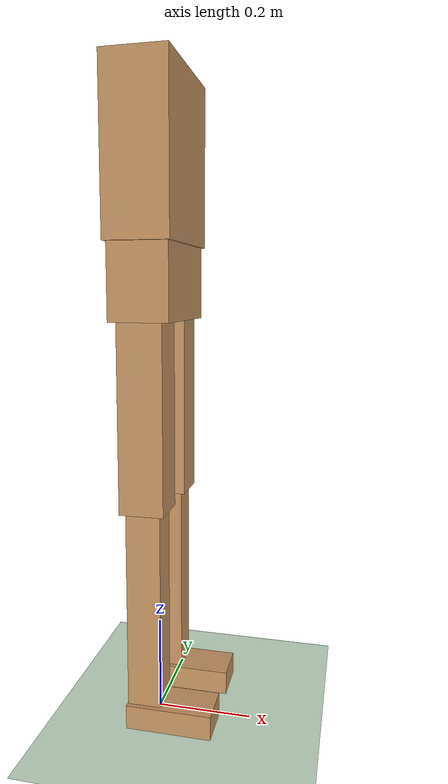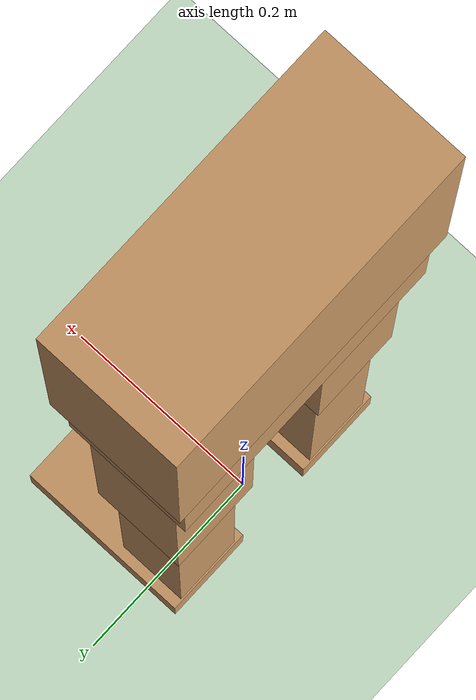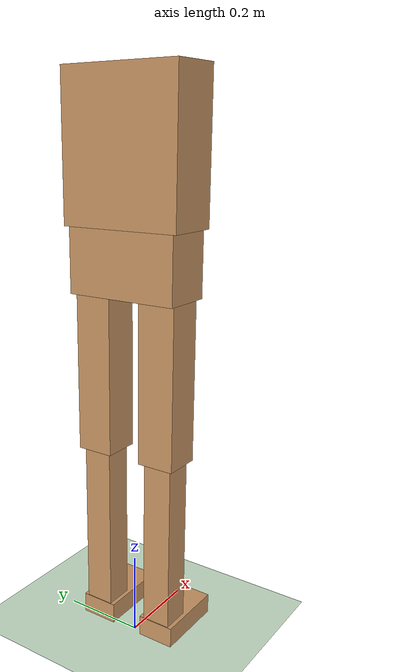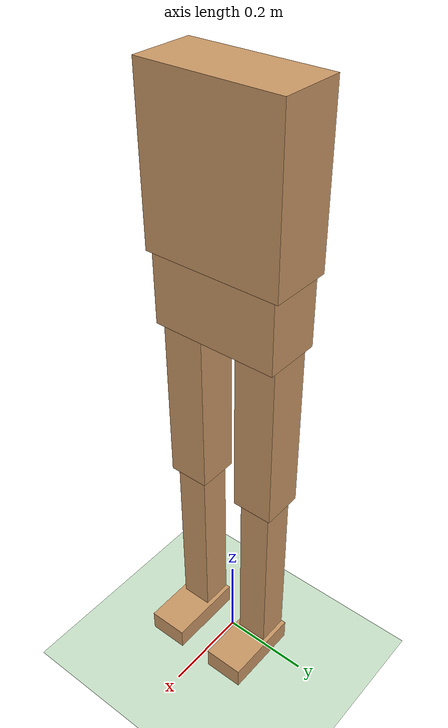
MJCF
<mujoco model="humanoid">
    <compiler angle="degree" inertiafromgeom="true"/>
    <default>
        <joint armature="1" damping="1" limited="true"/>
        <geom conaffinity="1" condim="1" contype="1" margin="0.001" material="geom" rgba="0.8 0.6 .4 1"/>
        <motor ctrllimited="true" ctrlrange="-.4 .4"/>
    </default>
    <option integrator="RK4" iterations="50" solver="PGS" timestep="0.003">
    </option>
    <size nkey="5" nuser_geom="1"/>
    <visual>
        <map fogend="5" fogstart="3"/>
    </visual>
    <asset>
        <texture builtin="gradient" height="100" rgb1=".4 .5 .6" rgb2="0 0 0" type="skybox" width="100"/>
        <texture builtin="flat" height="1278" mark="cross" markrgb="1 1 1" name="texgeom" random="0.01" rgb1="0.8 0.6 0.4" rgb2="0.8 0.6 0.4" type="cube" width="127"/>
        <texture builtin="checker" height="100" name="texplane" rgb1="0 0 0" rgb2="0.8 0.8 0.8" type="2d" width="100"/>
        <material name="MatPlane" reflectance="0.5" shininess="1" specular="1" texrepeat="60 60" texture="texplane"/>
        <material name="geom" texture="texgeom" texuniform="true"/>
    </asset>
    <worldbody>
       <light cutoff="100" diffuse="1 1 1" dir="-0 0 -1.3" directional="true" exponent="1" pos="0 0 1.3" specular=".1 .1 .1"/>
       <geom condim="3" friction="1 .1 .1" material="MatPlane" name="floor" pos="0 0 0" rgba="0.8 0.9 0.8 1" size="20 20 0.125" type="plane"/>
       <body name="pelvis" pos="0.0 0.0 0.9">
           <joint armature="0" damping="0" limited="false" name="root" pos="0 0 0" stiffness="0" type="free"/>
           <geom name="pelvis" type="box" pos="0.0 0.0 0.03" size="0.06 0.135 0.075"  mass="10.0"/>
           <body name="torso" pos="0.0 0.0 0.10" user="128">
               <joint armature="0.01" axis="1 0 0" damping="5" name="abdomen_x" pos="0.0 0.0 0.0" range="-15 15" stiffness="10" type="hinge"/>
               <joint armature="0.01" axis="0 1 0" damping="5" name="abdomen_y" pos="0.0 0.0 0.0" range="0 30" stiffness="10" type="hinge"/>
               <joint armature="0.01" axis="0 0 1" damping="5" name="abdomen_z" pos="0.0 0.0 0.0" range="-45 45" stiffness="20" type="hinge"/>
               <geom name="torso" type="box"  pos= "0.0 0.0 0.17" size="0.065 0.145 0.165" mass="15.0"/>
	   </body>

	   <body name="right_thigh" pos="0.0 -0.085 0.0">
               <joint armature="0.01" axis="1 0 0" damping="5" name="right_hip_x" pos="0.0 0.0 0.0" range="-45 0" stiffness="10" type="hinge"/>
               <joint armature="0.01" axis="0 1 0" damping="5" name="right_hip_y" pos="0.0 0.0 0.0" range="-120 60" stiffness="20" type="hinge"/>
               <joint armature="0.01" axis="0 0 1" damping="5" name="right_hip_z" pos="0.0 0.0 0.0" range="-45 45" stiffness="10" type="hinge"/>
               <geom name="right_thigh" type="box" pos="0.0 0.0 -0.21075" size="0.045 0.045 0.21075"  mass="4.5"/>
               <body name="right_knee" pos="0.0 0.0 -0.4215">
                   <joint armature="0.010" axis="0 -1 0" name="right_knee" pos="0.0 0.0 0.0" range="-110 0" type="hinge"/>
		   <geom name="right_knee" type="box" pos="0.0 0.0 -0.19493" size="0.035 0.035 0.215"  mass="3.0"/>
                   <body name="right_foot" pos="0.0 0.0 -0.40987">
                       <joint armature="0.0030" axis="1 0 0" name="right_ankle_x" pos="0.0 0.0 0.0" range="-30 30" type="hinge"/>
                       <joint armature="0.0030" axis="0 1 0" name="right_ankle_y" pos="0.0 0.0 0.0" range="-50 30" type="hinge"/>
                       <joint armature="0.0030" axis="0 0 1" name="right_ankle_z" pos="0.0 0.0 0.0" range="-30 30" type="hinge"/>
                       <geom name="right_foot" pos="0.0518 0.0 -0.0224" size="0.0885 0.045 0.025" type="box" user="0" mass="1.0"/>
                   </body>
                </body>
           </body>

           <body name="left_thigh" pos="0.0 0.085 0.0">
               <joint armature="0.01" axis="1 0 0" damping="5" name="left_hip_x" pos="0.0 0.0 0.0" range="-45 0" stiffness="10" type="hinge"/>
               <joint armature="0.01" axis="0 1 0" damping="5" name="left_hip_y" pos="0.0 0.0 0.0" range="-120 60" stiffness="20" type="hinge"/>
               <joint armature="0.01" axis="0 0 1" damping="5" name="left_hip_z" pos="0.0 0.0 0.0" range="-45 45" stiffness="10" type="hinge"/>
               <geom name="left_thigh" type="box" pos="0.0 0.0 -0.21075" size="0.045 0.045 0.21075"  mass="4.5"/>
               <body name="left_knee" pos="0.0 0.0  -0.4215">
                   <joint armature="0.010" axis="0 -1 0" name="left_knee" pos="0.0 0.0 0.0" range="-110 0" type="hinge"/>
                   <geom name="left_knee" type="box" pos="0.0 0.0 -0.19493" size="0.035 0.035 0.215"  mass="3.0"/>
                   <body name="left_foot" pos="0.0 0.0 -0.40987">
                       <joint armature="0.0030" axis="1 0 0" name="left_ankle_x" pos="0.0 0.0 0.0" range="-30 30" type="hinge"/>
                       <joint armature="0.0030" axis="0 1 0" name="left_ankle_y" pos="0.0 0.0 0.0" range="-50 30" type="hinge"/>
                       <joint armature="0.0030" axis="0 0 1" name="left_ankle_z" pos="0.0 0.0 0.0" range="-30 30" type="hinge"/>
                       <geom name="left_foot" pos="0.0518 0.0 -0.0224" size="0.0885 0.045  0.025" type="box" user="0" mass="1.0"/>
                   </body>
               </body>
           </body>
        </body>
    </worldbody>

    <tendon>
        <fixed name="left_hipknee">
            <joint coef="-1" joint="left_hip_y"/>
            <joint coef="1" joint="left_knee"/>
        </fixed>
        <fixed name="right_hipknee">
            <joint coef="-1" joint="right_hip_y"/>
            <joint coef="1" joint="right_knee"/>
        </fixed>
    </tendon>

    <actuator>
        <motor gear="100" joint="abdomen_x" name="abdomen_x"/>
        <motor gear="100" joint="abdomen_y" name="abdomen_y"/>
        <motor gear="100" joint="abdomen_z" name="abdomen_z"/>
        <motor gear="150" joint="right_hip_x" name="right_hip_x"/>
        <motor gear="300" joint="right_hip_y" name="right_hip_y"/>
        <motor gear="100" joint="right_hip_z" name="right_hip_z"/>
        <motor gear="100" joint="right_knee" name="right_knee"/>
        <motor gear="25" joint="right_ankle_x" name="right_ankle_x"/>
        <motor gear="25" joint="right_ankle_y" name="right_ankle_y"/>
        <motor gear="25" joint="right_ankle_z" name="right_ankle_z"/>
        <motor gear="150" joint="left_hip_x" name="left_hip_x"/>
        <motor gear="300" joint="left_hip_y" name="left_hip_y"/>
        <motor gear="100" joint="left_hip_z" name="left_hip_z"/>
        <motor gear="100" joint="left_knee" name="left_knee"/>
        <motor gear="25" joint="left_ankle_x" name="left_ankle_x"/>
        <motor gear="25" joint="left_ankle_y" name="left_ankle_y"/>
        <motor gear="25" joint="left_ankle_z" name="left_ankle_z"/>
    </actuator>
</mujoco>
